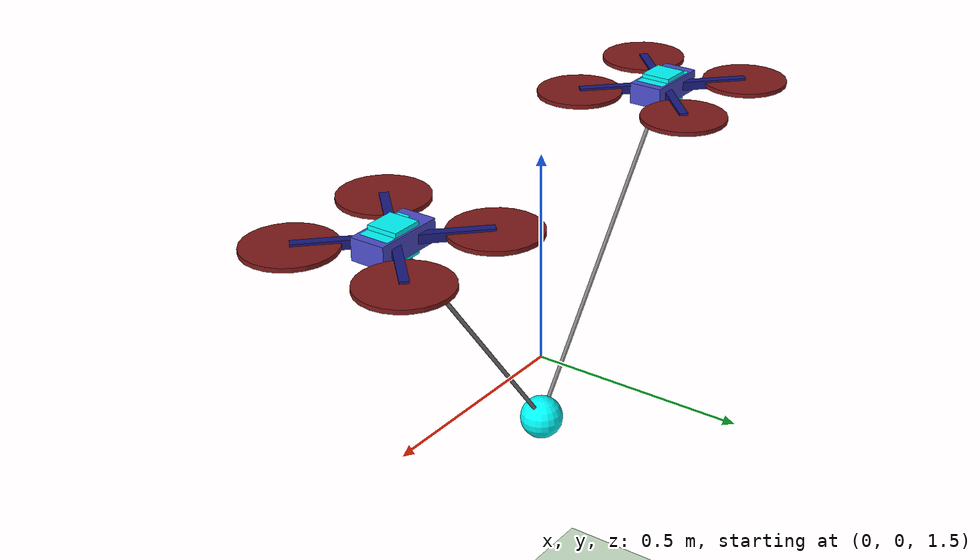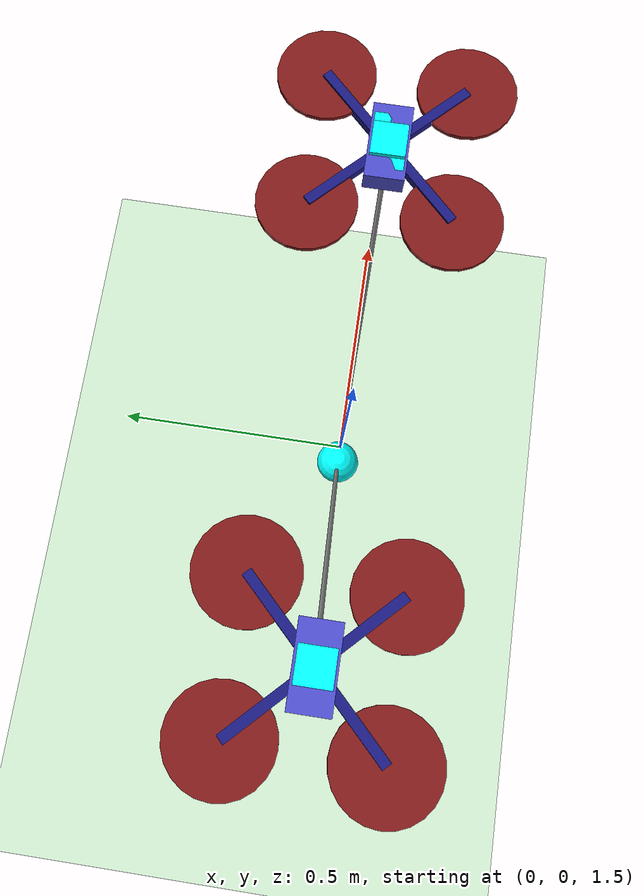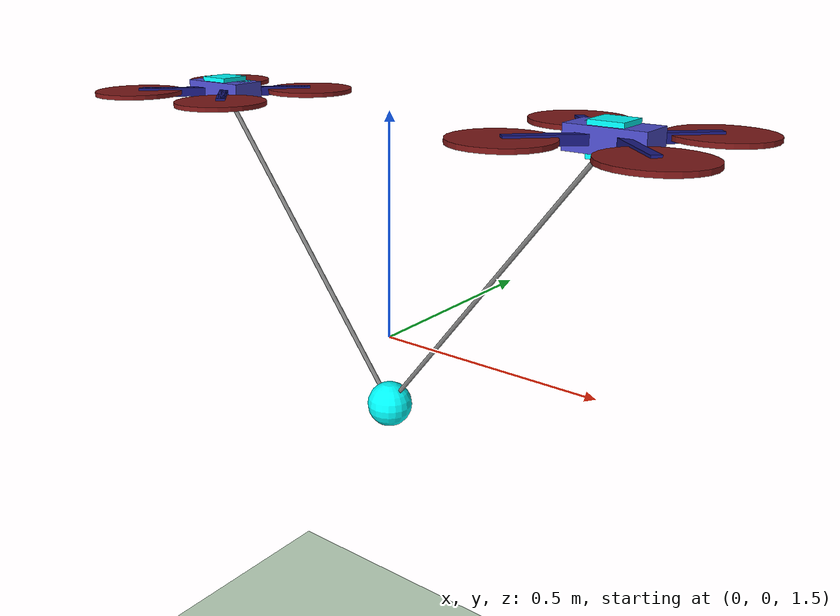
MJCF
<?xml version="1.0" ?>
<mujoco model="Quadcopter">
   <compiler angle="degree" coordinate="local" inertiafromgeom="true"/>
   <asset>
      <texture type="skybox" builtin="gradient" rgb1="1.0 1.0 1.0" rgb2="0.6 0.8 1.0" width="256" height="256"/>
   </asset>
   <worldbody>
      <geom name="ground" type="plane" size="5.0 5.0 0.02" friction="1.0" pos="0.0 0.0 0.0" rgba="0.8 0.9 0.8 1.0"/>
      <light directional="true" diffuse=".9 .9 .9" specular=".3 .3 .3" pos="0 0 4.0" dir="0 0.15 -1"/>
      <body name="quad0" pos="0.5 0.0 2.0" quat="1 0 0 0">
         <geom name="quad0_geom" type="box" pos="0.0 0.0 0.0" quat="1 0 0 0" size="0.08 0.04 0.025" mass="0.75" density="1000" rgba="0.3 0.3 0.8 1.0"/>
         <joint name="quad0_root_joint" type="free" limited="false" pos="0.0 0.0 0.0" axis="0.0 0.0 1.0" range="-1.0 1.0" armature="0.0" damping="0.1" stiffness="0.0"/>
         <geom name="quad0_rotor_arm_geom_0" type="box" pos="0.0 0.0 0.0" quat="0.92388 0 0 0.382683" size="0.2 0.01 0.01" mass="0.01" density="1000" rgba="0.1 0.1 0.5 1.0"/>
         <geom name="quad0_rotor_prop_geom_0" type="cylinder" size="0.1 0.005" pos="0.1414213562373095 0.14142135623730953 0.0" mass="0.05" density="1000" rgba="0.5 0.1 0.1 1.0"/>
         <geom name="quad0_rotor_arm_geom_1" type="box" pos="0.0 0.0 0.0" quat="0.382683 0 0 0.92388" size="0.2 0.01 0.01" mass="0.01" density="1000" rgba="0.1 0.1 0.5 1.0"/>
         <geom name="quad0_rotor_prop_geom_1" type="cylinder" size="0.1 0.005" pos="-0.1414213562373095 0.14142135623730953 0.0" mass="0.05" density="1000" rgba="0.5 0.1 0.1 1.0"/>
         <geom name="quad0_rotor_arm_geom_2" type="box" pos="0.0 0.0 0.0" quat="-0.382683 0 0 0.92388" size="0.2 0.01 0.01" mass="0.01" density="1000" rgba="0.1 0.1 0.5 1.0"/>
         <geom name="quad0_rotor_prop_geom_2" type="cylinder" size="0.1 0.005" pos="-0.1414213562373095 -0.1414213562373095 0.0" mass="0.05" density="1000" rgba="0.5 0.1 0.1 1.0"/>
         <geom name="quad0_rotor_arm_geom_3" type="box" pos="0.0 0.0 0.0" quat="-0.92388 0 0 0.382683" size="0.2 0.01 0.01" mass="0.01" density="1000" rgba="0.1 0.1 0.5 1.0"/>
         <geom name="quad0_rotor_prop_geom_3" type="cylinder" size="0.1 0.005" pos="0.14142135623730948 -0.14142135623730956 0.0" mass="0.05" density="1000" rgba="0.5 0.1 0.1 1.0"/>
         <site name="quad0_end1" type="sphere" pos="0.0 0.0 0.0" quat="1 0 0 0" size="0.01" rgba="0.1 0.1 0.5 1.0"/>
         <site name="quad0_thrust" type="box" pos="0.0 0.0 0.0" quat="1 0 0 0" size="0.035 0.035 0.035" rgba="0.0 1 1 1.0"/>
         <site name="quad0_Mx" type="box" pos="0.0 0.0 0.0" quat="1 0 0 0" size="0.06 0.035 0.025" rgba="0.0 1 1 1.0"/>
         <site name="quad0_My" type="box" pos="0.0 0.0 0.0" quat="1 0 0 0" size="0.06 0.035 0.025" rgba="0.0 1 1 1.0"/>
         <site name="quad0_Mz" type="box" pos="0.0 0.0 0.0" quat="1 0 0 0" size="0.06 0.035 0.025" rgba="0.0 1 1 1.0"/>
      </body>
      <body name="quad1" pos="-0.5 6.123233995736766e-17 2.0" quat="1 0 0 0">
         <geom name="quad1_geom" type="box" pos="0.0 0.0 0.0" quat="1 0 0 0" size="0.08 0.04 0.025" mass="0.75" density="1000" rgba="0.3 0.3 0.8 1.0"/>
         <joint name="quad1_root_joint" type="free" limited="false" pos="0.0 0.0 0.0" axis="0.0 0.0 1.0" range="-1.0 1.0" armature="0.0" damping="0.1" stiffness="0.0"/>
         <geom name="quad1_rotor_arm_geom_0" type="box" pos="0.0 0.0 0.0" quat="0.92388 0 0 0.382683" size="0.2 0.01 0.01" mass="0.01" density="1000" rgba="0.1 0.1 0.5 1.0"/>
         <geom name="quad1_rotor_prop_geom_0" type="cylinder" size="0.1 0.005" pos="0.1414213562373095 0.14142135623730953 0.0" mass="0.05" density="1000" rgba="0.5 0.1 0.1 1.0"/>
         <geom name="quad1_rotor_arm_geom_1" type="box" pos="0.0 0.0 0.0" quat="0.382683 0 0 0.92388" size="0.2 0.01 0.01" mass="0.01" density="1000" rgba="0.1 0.1 0.5 1.0"/>
         <geom name="quad1_rotor_prop_geom_1" type="cylinder" size="0.1 0.005" pos="-0.1414213562373095 0.14142135623730953 0.0" mass="0.05" density="1000" rgba="0.5 0.1 0.1 1.0"/>
         <geom name="quad1_rotor_arm_geom_2" type="box" pos="0.0 0.0 0.0" quat="-0.382683 0 0 0.92388" size="0.2 0.01 0.01" mass="0.01" density="1000" rgba="0.1 0.1 0.5 1.0"/>
         <geom name="quad1_rotor_prop_geom_2" type="cylinder" size="0.1 0.005" pos="-0.1414213562373095 -0.1414213562373095 0.0" mass="0.05" density="1000" rgba="0.5 0.1 0.1 1.0"/>
         <geom name="quad1_rotor_arm_geom_3" type="box" pos="0.0 0.0 0.0" quat="-0.92388 0 0 0.382683" size="0.2 0.01 0.01" mass="0.01" density="1000" rgba="0.1 0.1 0.5 1.0"/>
         <geom name="quad1_rotor_prop_geom_3" type="cylinder" size="0.1 0.005" pos="0.14142135623730948 -0.14142135623730956 0.0" mass="0.05" density="1000" rgba="0.5 0.1 0.1 1.0"/>
         <site name="quad1_end1" type="sphere" pos="0.0 0.0 0.0" quat="1 0 0 0" size="0.01" rgba="0.1 0.1 0.5 1.0"/>
         <site name="quad1_thrust" type="box" pos="0.0 0.0 0.0" quat="1 0 0 0" size="0.035 0.035 0.035" rgba="0.0 1 1 1.0"/>
         <site name="quad1_Mx" type="box" pos="0.0 0.0 0.0" quat="1 0 0 0" size="0.06 0.035 0.025" rgba="0.0 1 1 1.0"/>
         <site name="quad1_My" type="box" pos="0.0 0.0 0.0" quat="1 0 0 0" size="0.06 0.035 0.025" rgba="0.0 1 1 1.0"/>
         <site name="quad1_Mz" type="box" pos="0.0 0.0 0.0" quat="1 0 0 0" size="0.06 0.035 0.025" rgba="0.0 1 1 1.0"/>
      </body>
      <body name="pyld" pos="0.0 0.0 1.34" quat="1 0 0 0">
         <geom name="pyld" type="sphere" size="0.05" mass="0.15" density="1000" rgba="0.0 1 1 1.0"/>
         <site name="end2" type="sphere" pos="0.0 0.0 0.0" quat="1 0 0 0" size="0.01" rgba="0.1 0.1 0.5 1.0"/>
         <joint name="pyld_joint" type="free" limited="false" pos="0.0 0.0 0.0" axis="0.0 0.0 1.0" range="-1.0 1.0" armature="0.0" damping="0.1" stiffness="0.0"/>
      </body>
   </worldbody>
   <actuator>
      <motor ctrllimited="true" site="quad0_thrust" ctrlrange="0.0 30.0" gear="0.0 0.0 1.0 0.0 0.0 0.0"/>
      <motor ctrllimited="true" site="quad0_Mx" ctrlrange="-3.0 3.0" gear="0.0 0.0 0.0 1.0 0.0 0.0"/>
      <motor ctrllimited="true" site="quad0_My" ctrlrange="-3.0 3.0" gear="0.0 0.0 0.0 0.0 1.0 0.0"/>
      <motor ctrllimited="true" site="quad0_Mz" ctrlrange="-3.0 3.0" gear="0.0 0.0 0.0 0.0 0.0 1.0"/>
   </actuator>
   <actuator>
      <motor ctrllimited="true" site="quad1_thrust" ctrlrange="0.0 30.0" gear="0.0 0.0 1.0 0.0 0.0 0.0"/>
      <motor ctrllimited="true" site="quad1_Mx" ctrlrange="-3.0 3.0" gear="0.0 0.0 0.0 1.0 0.0 0.0"/>
      <motor ctrllimited="true" site="quad1_My" ctrlrange="-3.0 3.0" gear="0.0 0.0 0.0 0.0 1.0 0.0"/>
      <motor ctrllimited="true" site="quad1_Mz" ctrlrange="-3.0 3.0" gear="0.0 0.0 0.0 0.0 0.0 1.0"/>
   </actuator>
   <tendon>
      <spatial limited="true" range="0.0 1.0" width="0.005" damping="0.0" stiffness="0.0">
         <site site="quad0_end1"/>
         <site site="end2"/>
      </spatial>
      <spatial limited="true" range="0.0 1.0" width="0.005" damping="0.0" stiffness="0.0">
         <site site="quad1_end1"/>
         <site site="end2"/>
      </spatial>
   </tendon>
</mujoco>
